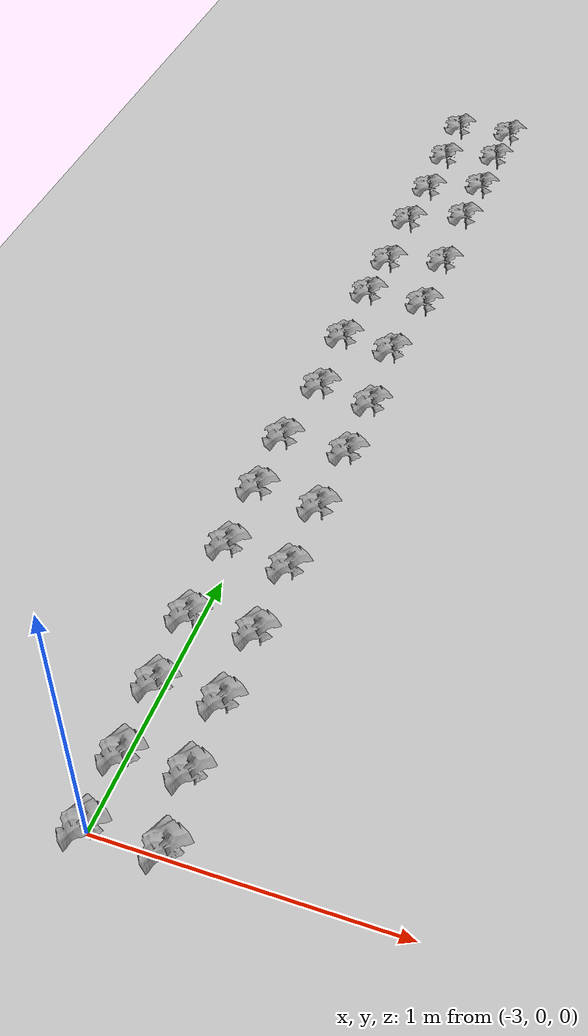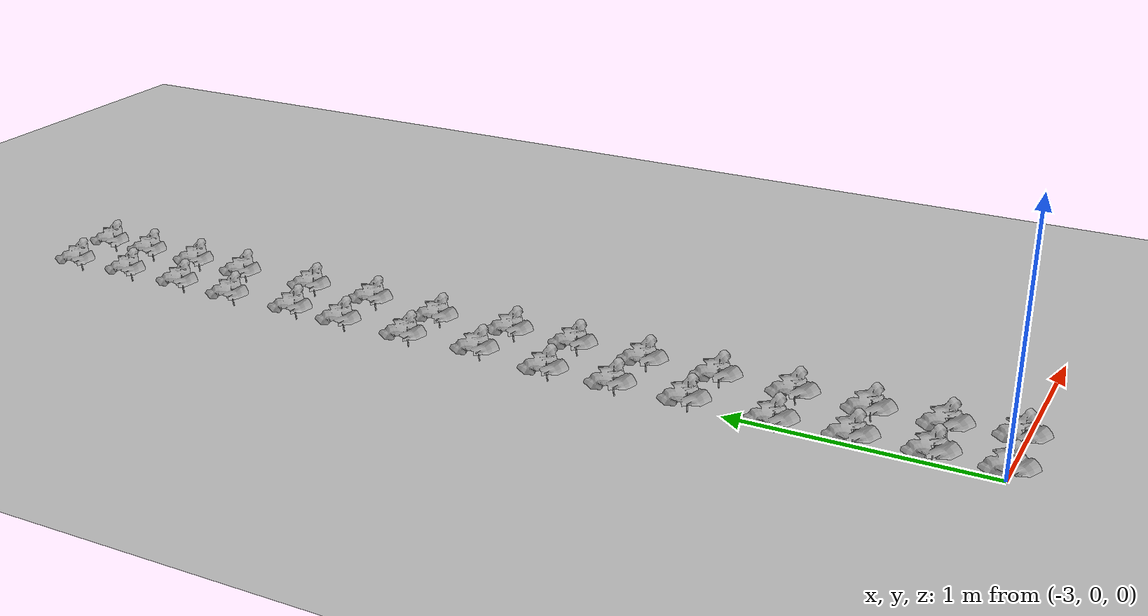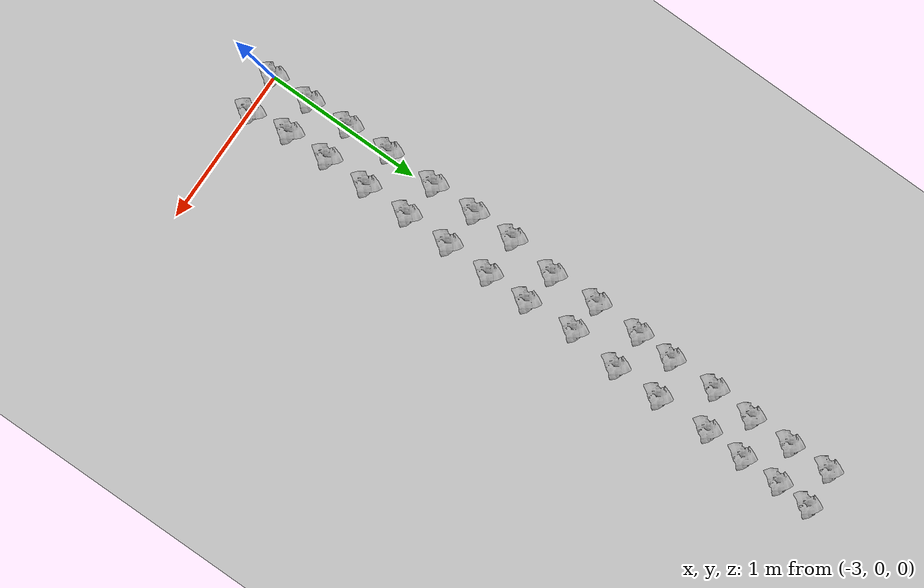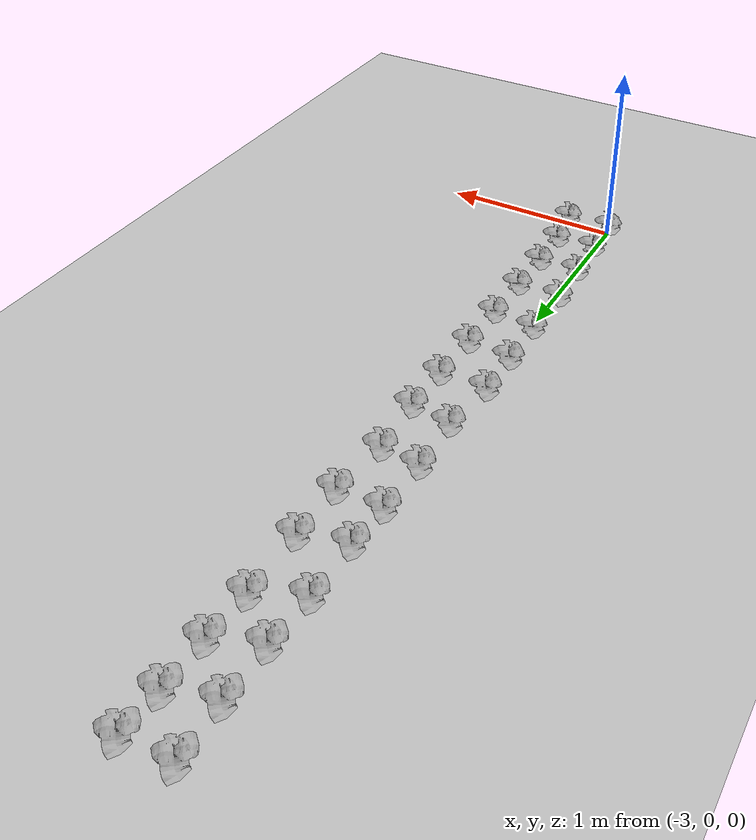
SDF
<sdf version="1.6">
 <world name="default">
  <light name="sun" type="directional">
   <pose>0 0 10 0 -0 0</pose>
   <diffuse>0.8 0.8 0.8 1</diffuse>
   <specular>0.1 0.1 0.1 1</specular>
   <attenuation>
    <range>1000</range>
    <constant>0.9</constant>
    <linear>0.01</linear>
    <quadratic>0.001</quadratic>
   </attenuation>
   <direction>-0.5 0.5 -1</direction>
  </light>
  <model name="ground_plane">
   <static>1</static>
   <link name="link">
    <collision name="collision">
     <geometry><plane><normal>0 0 1</normal><size>100 100</size></plane></geometry>
     <surface><friction><ode><mu>100</mu><mu2>50</mu2></ode></friction></surface>
    </collision>
    <visual name="visual">
     <cast_shadows>0</cast_shadows>
     <geometry><plane><normal>0 0 1</normal><size>100 100</size></plane></geometry>
     <material>
      <script><uri>file://media/materials/scripts/gazebo.material</uri><name>Gazebo/Grey</name></script>
     </material>
    </visual>
   </link>
  </model>
  <gravity>0 0 -9.8</gravity>
  <magnetic_field>6e-06 2.3e-05 -4.2e-05</magnetic_field>
  <atmosphere type="adiabatic"/>
  <physics name="default_physics" default="0" type="ode">
   <max_step_size>0.001</max_step_size>
   <real_time_factor>1</real_time_factor>
   <real_time_update_rate>1000</real_time_update_rate>
  </physics>
  <scene><ambient>0.4 0.4 0.4 1</ambient><background>0.7 0.7 0.7 1</background><shadows>1</shadows></scene>
  <spherical_coordinates>
   <surface_model>EARTH_WGS84</surface_model>
   <latitude_deg>0</latitude_deg>
   <longitude_deg>0</longitude_deg>
   <elevation>0</elevation>
   <heading_deg>0</heading_deg>
  </spherical_coordinates>
  <model name="cotton1_0">
   <pose>-2.98628 -0.00872 0 0 -0 0</pose>
   <static>1</static>
   <link name="body">
    <collision name="collision">
     <geometry><mesh><uri>model://cotton1/cotton1.dae</uri><scale>1 1 1</scale></mesh></geometry>
    </collision>
    <visual name="visual">
     <geometry><mesh><uri>model://cotton1/cotton1.dae</uri><scale>1 1 1</scale></mesh></geometry>
    </visual>
   </link>
  </model>
  <model name="cotton1_1">
   <pose>-2.98989 0.246829 0 0 -0 0</pose>
   <static>1</static>
   <link name="body">
    <collision name="collision">
     <geometry><mesh><uri>model://cotton1/cotton1.dae</uri><scale>1 1 1</scale></mesh></geometry>
    </collision>
    <visual name="visual">
     <geometry><mesh><uri>model://cotton1/cotton1.dae</uri><scale>1 1 1</scale></mesh></geometry>
    </visual>
   </link>
  </model>
  <model name="cotton1_2">
   <pose>-3.003 0.51742 0 0 -0 0</pose>
   <static>1</static>
   <link name="body">
    <collision name="collision">
     <geometry><mesh><uri>model://cotton1/cotton1.dae</uri><scale>1 1 1</scale></mesh></geometry>
    </collision>
    <visual name="visual">
     <geometry><mesh><uri>model://cotton1/cotton1.dae</uri><scale>1 1 1</scale></mesh></geometry>
    </visual>
   </link>
  </model>
  <model name="cotton1_3">
   <pose>-3.01603 0.795975 0 0 -0 0</pose>
   <static>1</static>
   <link name="body">
    <collision name="collision">
     <geometry><mesh><uri>model://cotton1/cotton1.dae</uri><scale>1 1 1</scale></mesh></geometry>
    </collision>
    <visual name="visual">
     <geometry><mesh><uri>model://cotton1/cotton1.dae</uri><scale>1 1 1</scale></mesh></geometry>
    </visual>
   </link>
  </model>
  <model name="cotton1_4">
   <pose>-3.01264 1.12213 0 0 -0 0</pose>
   <static>1</static>
   <link name="body">
    <collision name="collision">
     <geometry><mesh><uri>model://cotton1/cotton1.dae</uri><scale>1 1 1</scale></mesh></geometry>
    </collision>
    <visual name="visual">
     <geometry><mesh><uri>model://cotton1/cotton1.dae</uri><scale>1 1 1</scale></mesh></geometry>
    </visual>
   </link>
  </model>
  <model name="cotton1_5">
   <pose>-3.01762 1.40861 0 0 -0 0</pose>
   <static>1</static>
   <link name="body">
    <collision name="collision">
     <geometry><mesh><uri>model://cotton1/cotton1.dae</uri><scale>1 1 1</scale></mesh></geometry>
    </collision>
    <visual name="visual">
     <geometry><mesh><uri>model://cotton1/cotton1.dae</uri><scale>1 1 1</scale></mesh></geometry>
    </visual>
   </link>
  </model>
  <model name="cotton1_6">
   <pose>-3.02278 1.6792 0 0 -0 0</pose>
   <static>1</static>
   <link name="body">
    <collision name="collision">
     <geometry><mesh><uri>model://cotton1/cotton1.dae</uri><scale>1 1 1</scale></mesh></geometry>
    </collision>
    <visual name="visual">
     <geometry><mesh><uri>model://cotton1/cotton1.dae</uri><scale>1 1 1</scale></mesh></geometry>
    </visual>
   </link>
  </model>
  <model name="cotton1_7">
   <pose>-2.98774 1.98917 0 0 -0 0</pose>
   <static>1</static>
   <link name="body">
    <collision name="collision">
     <geometry><mesh><uri>model://cotton1/cotton1.dae</uri><scale>1 1 1</scale></mesh></geometry>
    </collision>
    <visual name="visual">
     <geometry><mesh><uri>model://cotton1/cotton1.dae</uri><scale>1 1 1</scale></mesh></geometry>
    </visual>
   </link>
  </model>
  <model name="cotton1_8">
   <pose>-3.00044 2.2997 0 0 -0 0</pose>
   <static>1</static>
   <link name="body">
    <collision name="collision">
     <geometry><mesh><uri>model://cotton1/cotton1.dae</uri><scale>1 1 1</scale></mesh></geometry>
    </collision>
    <visual name="visual">
     <geometry><mesh><uri>model://cotton1/cotton1.dae</uri><scale>1 1 1</scale></mesh></geometry>
    </visual>
   </link>
  </model>
  <model name="cotton1_9">
   <pose>-2.9973 2.60209 0 0 -0 0</pose>
   <static>1</static>
   <link name="body">
    <collision name="collision">
     <geometry><mesh><uri>model://cotton1/cotton1.dae</uri><scale>1 1 1</scale></mesh></geometry>
    </collision>
    <visual name="visual">
     <geometry><mesh><uri>model://cotton1/cotton1.dae</uri><scale>1 1 1</scale></mesh></geometry>
    </visual>
   </link>
  </model>
  <model name="cotton1_10">
   <pose>-2.98688 2.8408 0 0 -0 0</pose>
   <static>1</static>
   <link name="body">
    <collision name="collision">
     <geometry><mesh><uri>model://cotton1/cotton1.dae</uri><scale>1 1 1</scale></mesh></geometry>
    </collision>
    <visual name="visual">
     <geometry><mesh><uri>model://cotton1/cotton1.dae</uri><scale>1 1 1</scale></mesh></geometry>
    </visual>
   </link>
  </model>
  <model name="cotton1_11">
   <pose>-2.99161 3.15129 0 0 -0 0</pose>
   <static>1</static>
   <link name="body">
    <collision name="collision">
     <geometry><mesh><uri>model://cotton1/cotton1.dae</uri><scale>1 1 1</scale></mesh></geometry>
    </collision>
    <visual name="visual">
     <geometry><mesh><uri>model://cotton1/cotton1.dae</uri><scale>1 1 1</scale></mesh></geometry>
    </visual>
   </link>
  </model>
  <model name="cotton1_12">
   <pose>-2.97982 3.42121 0 0 -0 0</pose>
   <static>1</static>
   <link name="body">
    <collision name="collision">
     <geometry><mesh><uri>model://cotton1/cotton1.dae</uri><scale>1 1 1</scale></mesh></geometry>
    </collision>
    <visual name="visual">
     <geometry><mesh><uri>model://cotton1/cotton1.dae</uri><scale>1 1 1</scale></mesh></geometry>
    </visual>
   </link>
  </model>
  <model name="cotton1_13">
   <pose>-2.97914 3.70013 0 0 -0 0</pose>
   <static>1</static>
   <link name="body">
    <collision name="collision">
     <geometry><mesh><uri>model://cotton1/cotton1.dae</uri><scale>1 1 1</scale></mesh></geometry>
    </collision>
    <visual name="visual">
     <geometry><mesh><uri>model://cotton1/cotton1.dae</uri><scale>1 1 1</scale></mesh></geometry>
    </visual>
   </link>
  </model>
  <model name="cotton1_14">
   <pose>-2.98747 3.97006 0 0 -0 0</pose>
   <static>1</static>
   <link name="body">
    <collision name="collision">
     <geometry><mesh><uri>model://cotton1/cotton1.dae</uri><scale>1 1 1</scale></mesh></geometry>
    </collision>
    <visual name="visual">
     <geometry><mesh><uri>model://cotton1/cotton1.dae</uri><scale>1 1 1</scale></mesh></geometry>
    </visual>
   </link>
  </model>
  <model name="cotton1_15">
   <pose>-2.73635 0.003363 0 0 -0 0</pose>
   <static>1</static>
   <link name="body">
    <collision name="collision">
     <geometry><mesh><uri>model://cotton1/cotton1.dae</uri><scale>1 1 1</scale></mesh></geometry>
    </collision>
    <visual name="visual">
     <geometry><mesh><uri>model://cotton1/cotton1.dae</uri><scale>1 1 1</scale></mesh></geometry>
    </visual>
   </link>
  </model>
  <model name="cotton1_16">
   <pose>-2.77169 0.255166 0 0 -0 0</pose>
   <static>1</static>
   <link name="body">
    <collision name="collision">
     <geometry><mesh><uri>model://cotton1/cotton1.dae</uri><scale>1 1 1</scale></mesh></geometry>
    </collision>
    <visual name="visual">
     <geometry><mesh><uri>model://cotton1/cotton1.dae</uri><scale>1 1 1</scale></mesh></geometry>
    </visual>
   </link>
  </model>
  <model name="cotton1_1_clone">
   <pose>-2.78069 0.522121 0 0 -0 0</pose>
   <static>1</static>
   <link name="body">
    <collision name="collision">
     <geometry><mesh><uri>model://cotton1/cotton1.dae</uri><scale>1 1 1</scale></mesh></geometry>
    </collision>
    <visual name="visual">
     <geometry><mesh><uri>model://cotton1/cotton1.dae</uri><scale>1 1 1</scale></mesh></geometry>
    </visual>
   </link>
  </model>
  <model name="cotton1_1_clone_0">
   <pose>-2.77916 0.801918 0 0 -0 0</pose>
   <static>1</static>
   <link name="body">
    <collision name="collision">
     <geometry><mesh><uri>model://cotton1/cotton1.dae</uri><scale>1 1 1</scale></mesh></geometry>
    </collision>
    <visual name="visual">
     <geometry><mesh><uri>model://cotton1/cotton1.dae</uri><scale>1 1 1</scale></mesh></geometry>
    </visual>
   </link>
  </model>
  <model name="cotton1_1_clone_1">
   <pose>-2.77844 1.09542 0 0 -0 0</pose>
   <static>1</static>
   <link name="body">
    <collision name="collision">
     <geometry><mesh><uri>model://cotton1/cotton1.dae</uri><scale>1 1 1</scale></mesh></geometry>
    </collision>
    <visual name="visual">
     <geometry><mesh><uri>model://cotton1/cotton1.dae</uri><scale>1 1 1</scale></mesh></geometry>
    </visual>
   </link>
  </model>
  <model name="cotton1_1_clone_2">
   <pose>-2.77772 1.38894 0 0 -0 0</pose>
   <static>1</static>
   <link name="body">
    <collision name="collision">
     <geometry><mesh><uri>model://cotton1/cotton1.dae</uri><scale>1 1 1</scale></mesh></geometry>
    </collision>
    <visual name="visual">
     <geometry><mesh><uri>model://cotton1/cotton1.dae</uri><scale>1 1 1</scale></mesh></geometry>
    </visual>
   </link>
  </model>
  <model name="cotton1_1_clone_3">
   <pose>-2.77111 1.68249 0 0 -0 0</pose>
   <static>1</static>
   <link name="body">
    <collision name="collision">
     <geometry><mesh><uri>model://cotton1/cotton1.dae</uri><scale>1 1 1</scale></mesh></geometry>
    </collision>
    <visual name="visual">
     <geometry><mesh><uri>model://cotton1/cotton1.dae</uri><scale>1 1 1</scale></mesh></geometry>
    </visual>
   </link>
  </model>
  <model name="cotton1_1_clone_4">
   <pose>-2.77045 1.95847 0 0 -0 0</pose>
   <static>1</static>
   <link name="body">
    <collision name="collision">
     <geometry><mesh><uri>model://cotton1/cotton1.dae</uri><scale>1 1 1</scale></mesh></geometry>
    </collision>
    <visual name="visual">
     <geometry><mesh><uri>model://cotton1/cotton1.dae</uri><scale>1 1 1</scale></mesh></geometry>
    </visual>
   </link>
  </model>
  <model name="cotton1_1_clone_5">
   <pose>-2.79312 2.28152 0 0 -0 0</pose>
   <static>1</static>
   <link name="body">
    <collision name="collision">
     <geometry><mesh><uri>model://cotton1/cotton1.dae</uri><scale>1 1 1</scale></mesh></geometry>
    </collision>
    <visual name="visual">
     <geometry><mesh><uri>model://cotton1/cotton1.dae</uri><scale>1 1 1</scale></mesh></geometry>
    </visual>
   </link>
  </model>
  <model name="cotton1_1_clone_6">
   <pose>-2.75937 2.60701 0 0 -0 0</pose>
   <static>1</static>
   <link name="body">
    <collision name="collision">
     <geometry><mesh><uri>model://cotton1/cotton1.dae</uri><scale>1 1 1</scale></mesh></geometry>
    </collision>
    <visual name="visual">
     <geometry><mesh><uri>model://cotton1/cotton1.dae</uri><scale>1 1 1</scale></mesh></geometry>
    </visual>
   </link>
  </model>
  <model name="cotton1_1_clone_7">
   <pose>-2.75863 2.90951 0 0 -0 0</pose>
   <static>1</static>
   <link name="body">
    <collision name="collision">
     <geometry><mesh><uri>model://cotton1/cotton1.dae</uri><scale>1 1 1</scale></mesh></geometry>
    </collision>
    <visual name="visual">
     <geometry><mesh><uri>model://cotton1/cotton1.dae</uri><scale>1 1 1</scale></mesh></geometry>
    </visual>
   </link>
  </model>
  <model name="cotton1_1_clone_8">
   <pose>-2.76696 3.2579 0 0 -0 0</pose>
   <static>1</static>
   <link name="body">
    <collision name="collision">
     <geometry><mesh><uri>model://cotton1/cotton1.dae</uri><scale>1 1 1</scale></mesh></geometry>
    </collision>
    <visual name="visual">
     <geometry><mesh><uri>model://cotton1/cotton1.dae</uri><scale>1 1 1</scale></mesh></geometry>
    </visual>
   </link>
  </model>
  <model name="cotton1_1_clone_9">
   <pose>-2.75718 3.51459 0 0 -0 0</pose>
   <static>1</static>
   <link name="body">
    <collision name="collision">
     <geometry><mesh><uri>model://cotton1/cotton1.dae</uri><scale>1 1 1</scale></mesh></geometry>
    </collision>
    <visual name="visual">
     <geometry><mesh><uri>model://cotton1/cotton1.dae</uri><scale>1 1 1</scale></mesh></geometry>
    </visual>
   </link>
  </model>
  <model name="cotton1_1_clone_10">
   <pose>-2.75656 3.77132 0 0 -0 0</pose>
   <static>1</static>
   <link name="body">
    <collision name="collision">
     <geometry><mesh><uri>model://cotton1/cotton1.dae</uri><scale>1 1 1</scale></mesh></geometry>
    </collision>
    <visual name="visual">
     <geometry><mesh><uri>model://cotton1/cotton1.dae</uri><scale>1 1 1</scale></mesh></geometry>
    </visual>
   </link>
  </model>
  <model name="cotton1_1_clone_11">
   <pose>-2.74686 3.99135 0 0 -0 0</pose>
   <static>1</static>
   <link name="body">
    <collision name="collision">
     <geometry><mesh><uri>model://cotton1/cotton1.dae</uri><scale>1 1 1</scale></mesh></geometry>
    </collision>
    <visual name="visual">
     <geometry><mesh><uri>model://cotton1/cotton1.dae</uri><scale>1 1 1</scale></mesh></geometry>
    </visual>
   </link>
  </model>
 </world>
</sdf>
